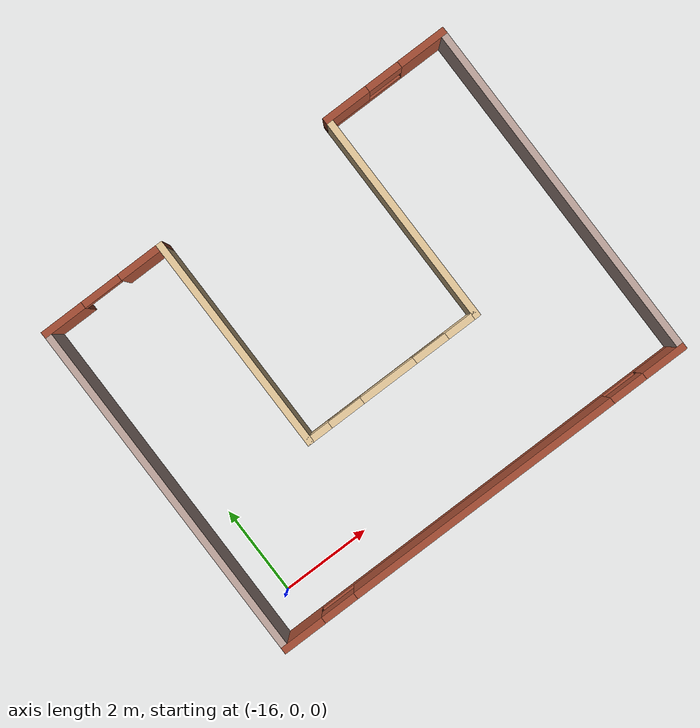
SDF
<?xml version='1.0'?>
<sdf version='1.6'>
  <model name='c_world'>
    <pose frame=''>-11.6404 3.12249 0 0 -0 0</pose>
    <link name='Wall_32'>
      <pose frame=''>0 -3.925 0 0 -0 0</pose>
      <visual name='Wall_32_Visual_0'>
        <pose frame=''>-4.49849 0 1.25 0 -0 0</pose>
        <geometry>
          <box>
            <size>1.00301 0.15 2.5</size>
          </box>
        </geometry>
        <material>
          <script>
            <uri>file://media/materials/scripts/gazebo.material</uri>
            <name>Gazebo/Bricks</name>
          </script>
          <ambient>1 1 1 1</ambient>
        </material>
      </visual>
      <collision name='Wall_32_Collision_0'>
        <geometry>
          <box>
            <size>1.00301 0.15 2.5</size>
          </box>
        </geometry>
        <pose frame=''>-4.49849 0 1.25 0 -0 0</pose>
      </collision>
      <visual name='Wall_32_Visual_1'>
        <pose frame=''>0.501507 0 0.25 0 -0 0</pose>
        <geometry>
          <box>
            <size>8.99699 0.15 0.5</size>
          </box>
        </geometry>
        <material>
          <script>
            <uri>file://media/materials/scripts/gazebo.material</uri>
            <name>Gazebo/Bricks</name>
          </script>
          <ambient>1 1 1 1</ambient>
        </material>
      </visual>
      <collision name='Wall_32_Collision_1'>
        <geometry>
          <box>
            <size>8.99699 0.15 0.5</size>
          </box>
        </geometry>
        <pose frame=''>0.501507 0 0.25 0 -0 0</pose>
      </collision>
      <visual name='Wall_32_Visual_2'>
        <pose frame=''>-0.002914 0 1.5 0 -0 0</pose>
        <geometry>
          <box>
            <size>6.38814 0.15 2</size>
          </box>
        </geometry>
        <material>
          <script>
            <uri>file://media/materials/scripts/gazebo.material</uri>
            <name>Gazebo/Bricks</name>
          </script>
          <ambient>1 1 1 1</ambient>
        </material>
      </visual>
      <collision name='Wall_32_Collision_2'>
        <geometry>
          <box>
            <size>6.38814 0.15 2</size>
          </box>
        </geometry>
        <pose frame=''>-0.002914 0 1.5 0 -0 0</pose>
      </collision>
      <visual name='Wall_32_Visual_3'>
        <pose frame=''>4.49558 0 1.5 0 -0 0</pose>
        <geometry>
          <box>
            <size>1.00884 0.15 2</size>
          </box>
        </geometry>
        <material>
          <script>
            <uri>file://media/materials/scripts/gazebo.material</uri>
            <name>Gazebo/Bricks</name>
          </script>
          <ambient>1 1 1 1</ambient>
        </material>
      </visual>
      <collision name='Wall_32_Collision_3'>
        <geometry>
          <box>
            <size>1.00884 0.15 2</size>
          </box>
        </geometry>
        <pose frame=''>4.49558 0 1.5 0 -0 0</pose>
      </collision>
      <visual name='Wall_32_Visual_4'>
        <pose frame=''>-3.59699 0 1.9 0 -0 0</pose>
        <geometry>
          <box>
            <size>0.8 0.15 1.2</size>
          </box>
        </geometry>
        <material>
          <script>
            <uri>file://media/materials/scripts/gazebo.material</uri>
            <name>Gazebo/Bricks</name>
          </script>
          <ambient>1 1 1 1</ambient>
        </material>
      </visual>
      <collision name='Wall_32_Collision_4'>
        <geometry>
          <box>
            <size>0.8 0.15 1.2</size>
          </box>
        </geometry>
        <pose frame=''>-3.59699 0 1.9 0 -0 0</pose>
      </collision>
      <visual name='Wall_32_Visual_5'>
        <pose frame=''>3.59116 0 1.9 0 -0 0</pose>
        <geometry>
          <box>
            <size>0.8 0.15 1.2</size>
          </box>
        </geometry>
        <material>
          <script>
            <uri>file://media/materials/scripts/gazebo.material</uri>
            <name>Gazebo/Bricks</name>
          </script>
          <ambient>1 1 1 1</ambient>
        </material>
      </visual>
      <collision name='Wall_32_Collision_5'>
        <geometry>
          <box>
            <size>0.8 0.15 1.2</size>
          </box>
        </geometry>
        <pose frame=''>3.59116 0 1.9 0 -0 0</pose>
      </collision>
    </link>
    <link name='Wall_38'>
      <pose frame=''>3.5 3.925 0 0 -0 3.14159</pose>
      <visual name='Wall_38_Visual_0'>
        <pose frame=''>-0.932339 0 1.25 0 -0 0</pose>
        <geometry>
          <box>
            <size>1.13532 0.15 2.5</size>
          </box>
        </geometry>
        <material>
          <script>
            <uri>file://media/materials/scripts/gazebo.material</uri>
            <name>Gazebo/Bricks</name>
          </script>
          <ambient>0.921569 0.807843 0.615686 1</ambient>
        </material>
      </visual>
      <collision name='Wall_38_Collision_0'>
        <geometry>
          <box>
            <size>1.13532 0.15 2.5</size>
          </box>
        </geometry>
        <pose frame=''>-0.932339 0 1.25 0 -0 0</pose>
      </collision>
      <visual name='Wall_38_Visual_1'>
        <pose frame=''>0.567661 0 0.25 0 -0 0</pose>
        <geometry>
          <box>
            <size>1.86468 0.15 0.5</size>
          </box>
        </geometry>
        <material>
          <script>
            <uri>file://media/materials/scripts/gazebo.material</uri>
            <name>Gazebo/Bricks</name>
          </script>
          <ambient>0.921569 0.807843 0.615686 1</ambient>
        </material>
      </visual>
      <collision name='Wall_38_Collision_1'>
        <geometry>
          <box>
            <size>1.86468 0.15 0.5</size>
          </box>
        </geometry>
        <pose frame=''>0.567661 0 0.25 0 -0 0</pose>
      </collision>
      <visual name='Wall_38_Visual_2'>
        <pose frame=''>0.967661 0 1.5 0 -0 0</pose>
        <geometry>
          <box>
            <size>1.06468 0.15 2</size>
          </box>
        </geometry>
        <material>
          <script>
            <uri>file://media/materials/scripts/gazebo.material</uri>
            <name>Gazebo/Bricks</name>
          </script>
          <ambient>0.921569 0.807843 0.615686 1</ambient>
        </material>
      </visual>
      <collision name='Wall_38_Collision_2'>
        <geometry>
          <box>
            <size>1.06468 0.15 2</size>
          </box>
        </geometry>
        <pose frame=''>0.967661 0 1.5 0 -0 0</pose>
      </collision>
      <visual name='Wall_38_Visual_3'>
        <pose frame=''>0.035321 0 1.9 0 -0 0</pose>
        <geometry>
          <box>
            <size>0.8 0.15 1.2</size>
          </box>
        </geometry>
        <material>
          <script>
            <uri>file://media/materials/scripts/gazebo.material</uri>
            <name>Gazebo/Bricks</name>
          </script>
          <ambient>0.921569 0.807843 0.615686 1</ambient>
        </material>
      </visual>
      <collision name='Wall_38_Collision_3'>
        <geometry>
          <box>
            <size>0.8 0.15 1.2</size>
          </box>
        </geometry>
        <pose frame=''>0.035321 0 1.9 0 -0 0</pose>
      </collision>
    </link>
    <link name='Wall_39'>
      <collision name='Wall_39_Collision'>
        <geometry>
          <box>
            <size>5 0.15 2.5</size>
          </box>
        </geometry>
        <pose frame=''>0 0 1.25 0 -0 0</pose>
      </collision>
      <visual name='Wall_39_Visual'>
        <pose frame=''>0 0 1.25 0 -0 0</pose>
        <geometry>
          <box>
            <size>5 0.15 2.5</size>
          </box>
        </geometry>
        <material>
          <script>
            <uri>file://media/materials/scripts/gazebo.material</uri>
            <name>Gazebo/Grey</name>
          </script>
          <ambient>0.921569 0.807843 0.615686 1</ambient>
        </material>
      </visual>
      <pose frame=''>2.075 1.5 0 0 0 -1.5708</pose>
    </link>
    <link name='Wall_41'>
      <collision name='Wall_41_Collision'>
        <geometry>
          <box>
            <size>5 0.15 2.5</size>
          </box>
        </geometry>
        <pose frame=''>0 0 1.25 0 -0 0</pose>
      </collision>
      <visual name='Wall_41_Visual'>
        <pose frame=''>0 0 1.25 0 -0 0</pose>
        <geometry>
          <box>
            <size>5 0.15 2.5</size>
          </box>
        </geometry>
        <material>
          <script>
            <uri>file://media/materials/scripts/gazebo.material</uri>
            <name>Gazebo/Grey</name>
          </script>
          <ambient>0.921569 0.807843 0.615686 1</ambient>
        </material>
      </visual>
      <pose frame=''>-2.075 1.5 0 0 -0 1.5708</pose>
    </link>
    <link name='Wall_42'>
      <pose frame=''>-3.5 3.925 0 0 -0 3.14159</pose>
      <visual name='Wall_42_Visual_0'>
        <pose frame=''>-0.947587 0 1.25 0 -0 0</pose>
        <geometry>
          <box>
            <size>1.10483 0.15 2.5</size>
          </box>
        </geometry>
        <material>
          <script>
            <uri>file://media/materials/scripts/gazebo.material</uri>
            <name>Gazebo/Bricks</name>
          </script>
          <ambient>0.921569 0.807843 0.615686 1</ambient>
        </material>
      </visual>
      <collision name='Wall_42_Collision_0'>
        <geometry>
          <box>
            <size>1.10483 0.15 2.5</size>
          </box>
        </geometry>
        <pose frame=''>-0.947587 0 1.25 0 -0 0</pose>
      </collision>
      <visual name='Wall_42_Visual_1'>
        <pose frame=''>1.00241 0 1.25 0 -0 0</pose>
        <geometry>
          <box>
            <size>0.995173 0.15 2.5</size>
          </box>
        </geometry>
        <material>
          <script>
            <uri>file://media/materials/scripts/gazebo.material</uri>
            <name>Gazebo/Bricks</name>
          </script>
          <ambient>0.921569 0.807843 0.615686 1</ambient>
        </material>
      </visual>
      <collision name='Wall_42_Collision_1'>
        <geometry>
          <box>
            <size>0.995173 0.15 2.5</size>
          </box>
        </geometry>
        <pose frame=''>1.00241 0 1.25 0 -0 0</pose>
      </collision>
      <visual name='Wall_42_Visual_2'>
        <pose frame=''>0.054827 0 2.25 0 -0 0</pose>
        <geometry>
          <box>
            <size>0.9 0.15 0.5</size>
          </box>
        </geometry>
        <material>
          <script>
            <uri>file://media/materials/scripts/gazebo.material</uri>
            <name>Gazebo/Bricks</name>
          </script>
          <ambient>0.921569 0.807843 0.615686 1</ambient>
        </material>
      </visual>
      <collision name='Wall_42_Collision_2'>
        <geometry>
          <box>
            <size>0.9 0.15 0.5</size>
          </box>
        </geometry>
        <pose frame=''>0.054827 0 2.25 0 -0 0</pose>
      </collision>
    </link>
    <link name='Wall_44'>
      <pose frame=''>0 -0.925 0 0 -0 3.14159</pose>
      <visual name='Wall_44_Visual_0'>
        <pose frame=''>-1.7531 0 1.25 0 -0 0</pose>
        <geometry>
          <box>
            <size>0.793793 0.15 2.5</size>
          </box>
        </geometry>
        <material>
          <script>
            <uri>file://media/materials/scripts/gazebo.material</uri>
            <name>Gazebo/Grey</name>
          </script>
          <ambient>0.921569 0.807843 0.615686 1</ambient>
        </material>
      </visual>
      <collision name='Wall_44_Collision_0'>
        <geometry>
          <box>
            <size>0.793793 0.15 2.5</size>
          </box>
        </geometry>
        <pose frame=''>-1.7531 0 1.25 0 -0 0</pose>
      </collision>
      <visual name='Wall_44_Visual_1'>
        <pose frame=''>0.396896 0 0.25 0 -0 0</pose>
        <geometry>
          <box>
            <size>3.50621 0.15 0.5</size>
          </box>
        </geometry>
        <material>
          <script>
            <uri>file://media/materials/scripts/gazebo.material</uri>
            <name>Gazebo/Grey</name>
          </script>
          <ambient>0.921569 0.807843 0.615686 1</ambient>
        </material>
      </visual>
      <collision name='Wall_44_Collision_1'>
        <geometry>
          <box>
            <size>3.50621 0.15 0.5</size>
          </box>
        </geometry>
        <pose frame=''>0.396896 0 0.25 0 -0 0</pose>
      </collision>
      <visual name='Wall_44_Visual_2'>
        <pose frame=''>0.097773 0 1.5 0 -0 0</pose>
        <geometry>
          <box>
            <size>1.30796 0.15 2</size>
          </box>
        </geometry>
        <material>
          <script>
            <uri>file://media/materials/scripts/gazebo.material</uri>
            <name>Gazebo/Grey</name>
          </script>
          <ambient>0.921569 0.807843 0.615686 1</ambient>
        </material>
      </visual>
      <collision name='Wall_44_Collision_2'>
        <geometry>
          <box>
            <size>1.30796 0.15 2</size>
          </box>
        </geometry>
        <pose frame=''>0.097773 0 1.5 0 -0 0</pose>
      </collision>
      <visual name='Wall_44_Visual_3'>
        <pose frame=''>1.85088 0 1.5 0 -0 0</pose>
        <geometry>
          <box>
            <size>0.598248 0.15 2</size>
          </box>
        </geometry>
        <material>
          <script>
            <uri>file://media/materials/scripts/gazebo.material</uri>
            <name>Gazebo/Grey</name>
          </script>
          <ambient>0.921569 0.807843 0.615686 1</ambient>
        </material>
      </visual>
      <collision name='Wall_44_Collision_3'>
        <geometry>
          <box>
            <size>0.598248 0.15 2</size>
          </box>
        </geometry>
        <pose frame=''>1.85088 0 1.5 0 -0 0</pose>
      </collision>
      <visual name='Wall_44_Visual_4'>
        <pose frame=''>-0.956207 0 1.9 0 -0 0</pose>
        <geometry>
          <box>
            <size>0.8 0.15 1.2</size>
          </box>
        </geometry>
        <material>
          <script>
            <uri>file://media/materials/scripts/gazebo.material</uri>
            <name>Gazebo/Grey</name>
          </script>
          <ambient>0.921569 0.807843 0.615686 1</ambient>
        </material>
      </visual>
      <collision name='Wall_44_Collision_4'>
        <geometry>
          <box>
            <size>0.8 0.15 1.2</size>
          </box>
        </geometry>
        <pose frame=''>-0.956207 0 1.9 0 -0 0</pose>
      </collision>
      <visual name='Wall_44_Visual_5'>
        <pose frame=''>1.15175 0 1.9 0 -0 0</pose>
        <geometry>
          <box>
            <size>0.8 0.15 1.2</size>
          </box>
        </geometry>
        <material>
          <script>
            <uri>file://media/materials/scripts/gazebo.material</uri>
            <name>Gazebo/Grey</name>
          </script>
          <ambient>0.921569 0.807843 0.615686 1</ambient>
        </material>
      </visual>
      <collision name='Wall_44_Collision_5'>
        <geometry>
          <box>
            <size>0.8 0.15 1.2</size>
          </box>
        </geometry>
        <pose frame=''>1.15175 0 1.9 0 -0 0</pose>
      </collision>
    </link>
    <link name='Wall_46'>
      <collision name='Wall_46_Collision'>
        <geometry>
          <box>
            <size>8 0.15 2.5</size>
          </box>
        </geometry>
        <pose frame=''>0 0 1.25 0 -0 0</pose>
      </collision>
      <visual name='Wall_46_Visual'>
        <pose frame=''>0 0 1.25 0 -0 0</pose>
        <geometry>
          <box>
            <size>8 0.15 2.5</size>
          </box>
        </geometry>
        <material>
          <script>
            <uri>file://media/materials/scripts/gazebo.material</uri>
            <name>Gazebo/Grey</name>
          </script>
          <ambient>0.760784 0.662745 0.627451 1</ambient>
        </material>
      </visual>
      <pose frame=''>-4.925 0 0 0 0 -1.5708</pose>
    </link>
    <link name='Wall_48'>
      <collision name='Wall_48_Collision'>
        <geometry>
          <box>
            <size>8 0.15 2.5</size>
          </box>
        </geometry>
        <pose frame=''>0 0 1.25 0 -0 0</pose>
      </collision>
      <visual name='Wall_48_Visual'>
        <pose frame=''>0 0 1.25 0 -0 0</pose>
        <geometry>
          <box>
            <size>8 0.15 2.5</size>
          </box>
        </geometry>
        <material>
          <script>
            <uri>file://media/materials/scripts/gazebo.material</uri>
            <name>Gazebo/Grey</name>
          </script>
          <ambient>0.760784 0.662745 0.627451 1</ambient>
        </material>
      </visual>
      <pose frame=''>4.925 0 0 0 0 -1.5708</pose>
    </link>
    <static>1</static>
  </model>
</sdf>
